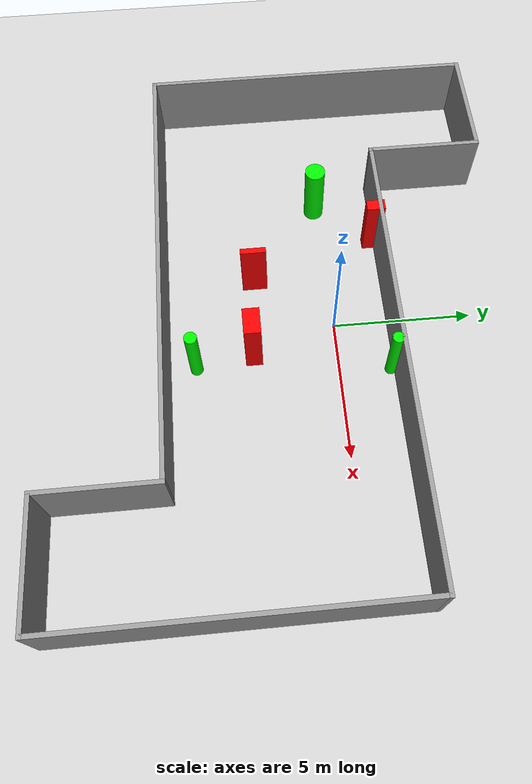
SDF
<sdf version="1.7">
 <world name="default">
  <light name="sun" type="directional">
   <pose>0 0 10 0 -0 0</pose>
   <diffuse>0.8 0.8 0.8 1</diffuse>
   <specular>0.2 0.2 0.2 1</specular>
   <attenuation>
    <range>1000</range>
    <constant>0.9</constant>
    <linear>0.01</linear>
    <quadratic>0.001</quadratic>
   </attenuation>
   <direction>-0.5 0.1 -0.9</direction>
   <spot><inner_angle>0</inner_angle><outer_angle>0</outer_angle><falloff>0</falloff></spot>
  </light>
  <model name="ground_plane">
   <static>1</static>
   <link name="link">
    <collision name="collision">
     <geometry><plane><normal>0 0 1</normal><size>100 100</size></plane></geometry>
     <surface>
      <contact><collide_bitmask>65535</collide_bitmask></contact>
      <friction><ode><mu>100</mu><mu2>50</mu2></ode></friction>
     </surface>
    </collision>
    <visual name="visual">
     <cast_shadows>0</cast_shadows>
     <geometry><plane><normal>0 0 1</normal><size>100 100</size></plane></geometry>
     <material>
      <script><uri>file://media/materials/scripts/gazebo.material</uri><name>Gazebo/Grey</name></script>
     </material>
    </visual>
   </link>
  </model>
  <gravity>0 0 -9.8</gravity>
  <magnetic_field>6e-06 2.3e-05 -4.2e-05</magnetic_field>
  <atmosphere type="adiabatic"/>
  <physics type="ode">
   <max_step_size>0.001</max_step_size>
   <real_time_factor>1</real_time_factor>
   <real_time_update_rate>1000</real_time_update_rate>
  </physics>
  <scene><ambient>0.4 0.4 0.4 1</ambient><background>0.7 0.7 0.7 1</background><shadows>1</shadows></scene>
  <spherical_coordinates>
   <surface_model>EARTH_WGS84</surface_model>
   <latitude_deg>0</latitude_deg>
   <longitude_deg>0</longitude_deg>
   <elevation>0</elevation>
   <heading_deg>0</heading_deg>
  </spherical_coordinates>
  <model name="my_base_walls">
   <link name="Wall_13">
    <collision name="Wall_13_Collision">
     <geometry><box><size>12.15 0.15 2.5</size></box></geometry>
     <pose>0 0 1.25 0 -0 0</pose>
    </collision>
    <visual name="Wall_13_Visual">
     <pose>0 0 1.25 0 -0 0</pose>
     <geometry><box><size>12.15 0.15 2.5</size></box></geometry>
     <material>
      <script><uri>file://media/materials/scripts/gazebo.material</uri><name>Gazebo/Grey</name></script>
      <ambient>1 1 1 1</ambient>
     </material>
     <meta><layer>0</layer></meta>
    </visual>
    <pose>10 -2 0 0 -0 1.5708</pose>
   </link>
   <link name="Wall_15">
    <collision name="Wall_15_Collision">
     <geometry><box><size>16.15 0.15 2.5</size></box></geometry>
     <pose>0 0 1.25 0 -0 0</pose>
    </collision>
    <visual name="Wall_15_Visual">
     <pose>0 0 1.25 0 -0 0</pose>
     <geometry><box><size>16.15 0.15 2.5</size></box></geometry>
     <material>
      <script><uri>file://media/materials/scripts/gazebo.material</uri><name>Gazebo/Grey</name></script>
      <ambient>1 1 1 1</ambient>
     </material>
     <meta><layer>0</layer></meta>
    </visual>
    <pose>2 4 0 0 -0 3.14159</pose>
   </link>
   <link name="Wall_17">
    <collision name="Wall_17_Collision">
     <geometry><box><size>4.15 0.15 2.5</size></box></geometry>
     <pose>0 0 1.25 0 -0 0</pose>
    </collision>
    <visual name="Wall_17_Visual">
     <pose>0 0 1.25 0 -0 0</pose>
     <geometry><box><size>4.15 0.15 2.5</size></box></geometry>
     <material>
      <script><uri>file://media/materials/scripts/gazebo.material</uri><name>Gazebo/Grey</name></script>
      <ambient>1 1 1 1</ambient>
     </material>
     <meta><layer>0</layer></meta>
    </visual>
    <pose>6 -6 0 0 -0 -1.5708</pose>
   </link>
   <link name="Wall_19">
    <collision name="Wall_19_Collision">
     <geometry><box><size>12.15 0.15 2.5</size></box></geometry>
     <pose>0 0 1.25 0 -0 0</pose>
    </collision>
    <visual name="Wall_19_Visual">
     <pose>0 0 1.25 0 -0 0</pose>
     <geometry><box><size>12.15 0.15 2.5</size></box></geometry>
     <material>
      <script><uri>file://media/materials/scripts/gazebo.material</uri><name>Gazebo/Grey</name></script>
      <ambient>1 1 1 1</ambient>
     </material>
     <meta><layer>0</layer></meta>
    </visual>
    <pose>-10 2 0 0 -0 1.5708</pose>
   </link>
   <link name="Wall_21">
    <collision name="Wall_21_Collision">
     <geometry><box><size>4.15 0.15 2.5</size></box></geometry>
     <pose>0 0 1.25 0 -0 0</pose>
    </collision>
    <visual name="Wall_21_Visual">
     <pose>0 0 1.25 0 -0 0</pose>
     <geometry><box><size>4.15 0.15 2.5</size></box></geometry>
     <material>
      <script><uri>file://media/materials/scripts/gazebo.material</uri><name>Gazebo/Grey</name></script>
      <ambient>1 1 1 1</ambient>
     </material>
     <meta><layer>0</layer></meta>
    </visual>
    <pose>-8 8 0 0 -0 0</pose>
   </link>
   <link name="Wall_23">
    <collision name="Wall_23_Collision">
     <geometry><box><size>4.15 0.15 2.5</size></box></geometry>
     <pose>0 0 1.25 0 -0 0</pose>
    </collision>
    <visual name="Wall_23_Visual">
     <pose>0 0 1.25 0 -0 0</pose>
     <geometry><box><size>4.15 0.15 2.5</size></box></geometry>
     <material>
      <script><uri>file://media/materials/scripts/gazebo.material</uri><name>Gazebo/Grey</name></script>
      <ambient>1 1 1 1</ambient>
     </material>
     <meta><layer>0</layer></meta>
    </visual>
    <pose>-6 6 0 0 -0 -1.5708</pose>
   </link>
   <link name="Wall_25">
    <collision name="Wall_25_Collision">
     <geometry><box><size>4.15 0.15 2.5</size></box></geometry>
     <pose>0 0 1.25 0 -0 0</pose>
    </collision>
    <visual name="Wall_25_Visual">
     <pose>0 0 1.25 0 -0 0</pose>
     <geometry><box><size>4.15 0.15 2.5</size></box></geometry>
     <material>
      <script><uri>file://media/materials/scripts/gazebo.material</uri><name>Gazebo/Grey</name></script>
      <ambient>1 1 1 1</ambient>
     </material>
     <meta><layer>0</layer></meta>
    </visual>
    <pose>8 -8 0 0 -0 0</pose>
   </link>
   <link name="Wall_9">
    <collision name="Wall_9_Collision">
     <geometry><box><size>16.15 0.15 2.5</size></box></geometry>
     <pose>0 0 1.25 0 -0 0</pose>
    </collision>
    <visual name="Wall_9_Visual">
     <pose>0 0 1.25 0 -0 0</pose>
     <geometry><box><size>16.15 0.15 2.5</size></box></geometry>
     <material>
      <script><uri>file://media/materials/scripts/gazebo.material</uri><name>Gazebo/Grey</name></script>
      <ambient>1 1 1 1</ambient>
     </material>
     <meta><layer>0</layer></meta>
    </visual>
    <pose>-2 -4 0 0 -0 3.14159</pose>
   </link>
   <static>1</static>
   <pose>-0 -2 0 0 -0 0</pose>
  </model>
  <model name="cylinder1">
   <static>1</static>
   <link name="link">
    <inertial>
     <mass>1</mass>
     <inertia><ixx>0.5</ixx><ixy>0</ixy><ixz>0</ixz><iyy>0.5</iyy><iyz>0</iyz><izz>1</izz></inertia>
    </inertial>
    <collision name="collision">
     <geometry><cylinder><radius>0.22218533018729697</radius><length>2.5</length></cylinder></geometry>
    </collision>
    <visual name="visual">
     <geometry><cylinder><radius>0.22218533018729697</radius><length>2.5</length></cylinder></geometry>
     <material>
      <ambient>0 1 0 1</ambient>
      <diffuse>0 1 0 1</diffuse>
      <specular>0.1 0.1 0.1 1</specular>
      <emissive>0 0 0 0</emissive>
     </material>
    </visual>
   </link>
   <pose>1.2806923012514364 -5.007397925030439 1.25 0 0 0</pose>
  </model>
  <model name="cylinder2">
   <static>1</static>
   <link name="link">
    <inertial>
     <mass>1</mass>
     <inertia><ixx>0.5</ixx><ixy>0</ixy><ixz>0</ixz><iyy>0.5</iyy><iyz>0</iyz><izz>1</izz></inertia>
    </inertial>
    <collision name="collision">
     <geometry><cylinder><radius>0.19943863182389246</radius><length>2.5</length></cylinder></geometry>
    </collision>
    <visual name="visual">
     <geometry><cylinder><radius>0.19943863182389246</radius><length>2.5</length></cylinder></geometry>
     <material>
      <ambient>0 1 0 1</ambient>
      <diffuse>0 1 0 1</diffuse>
      <specular>0.1 0.1 0.1 1</specular>
      <emissive>0 0 0 0</emissive>
     </material>
    </visual>
   </link>
   <pose>1.8735144007315894 1.7991969122840592 1.25 0 0 0</pose>
  </model>
  <model name="cylinder3">
   <static>1</static>
   <link name="link">
    <inertial>
     <mass>1</mass>
     <inertia><ixx>0.5</ixx><ixy>0</ixy><ixz>0</ixz><iyy>0.5</iyy><iyz>0</iyz><izz>1</izz></inertia>
    </inertial>
    <collision name="collision">
     <geometry><cylinder><radius>0.364330344392981</radius><length>2.5</length></cylinder></geometry>
    </collision>
    <visual name="visual">
     <geometry><cylinder><radius>0.364330344392981</radius><length>2.5</length></cylinder></geometry>
     <material>
      <ambient>0 1 0 1</ambient>
      <diffuse>0 1 0 1</diffuse>
      <specular>0.1 0.1 0.1 1</specular>
      <emissive>0 0 0 0</emissive>
     </material>
    </visual>
   </link>
   <pose>-5.138415990313675 -0.1945396343803676 1.25 0 0 0</pose>
  </model>
  <model name="box1">
   <static>1</static>
   <link name="link">
    <inertial>
     <mass>1</mass>
     <inertia><ixx>0.083</ixx><ixy>0</ixy><ixz>0</ixz><iyy>0.083</iyy><iyz>0</iyz><izz>0.083</izz></inertia>
    </inertial>
    <collision name="collision">
     <geometry><box><size>0.4025370639557543 0.660350433440471 2.5</size></box></geometry>
    </collision>
    <visual name="visual">
     <geometry><box><size>0.4025370639557543 0.660350433440471 2.5</size></box></geometry>
     <material>
      <ambient>1 0 0 1</ambient>
      <diffuse>1 0 0 1</diffuse>
      <specular>0.1 0.1 0.1 1</specular>
      <emissive>0 0 0 0</emissive>
     </material>
    </visual>
    <sensor name="my_contact" type="contact">
     <contact><collision>box_collision</collision><topic>__default_topic__</topic></contact>
    </sensor>
   </link>
   <pose>-3.4601375743943086 1.8185272318219834 1.25 0 0 0</pose>
  </model>
  <model name="box2">
   <static>1</static>
   <link name="link">
    <inertial>
     <mass>1</mass>
     <inertia><ixx>0.083</ixx><ixy>0</ixy><ixz>0</ixz><iyy>0.083</iyy><iyz>0</iyz><izz>0.083</izz></inertia>
    </inertial>
    <collision name="collision">
     <geometry><box><size>0.9487286577409646 0.5914519561160232 2.5</size></box></geometry>
    </collision>
    <visual name="visual">
     <geometry><box><size>0.9487286577409646 0.5914519561160232 2.5</size></box></geometry>
     <material>
      <ambient>1 0 0 1</ambient>
      <diffuse>1 0 0 1</diffuse>
      <specular>0.1 0.1 0.1 1</specular>
      <emissive>0 0 0 0</emissive>
     </material>
    </visual>
    <sensor name="my_contact" type="contact">
     <contact><collision>box_collision</collision><topic>__default_topic__</topic></contact>
    </sensor>
   </link>
   <pose>0.8207580015985059 -2.9658354078818956 1.25 0 0 0</pose>
  </model>
  <model name="box3">
   <static>1</static>
   <link name="link">
    <inertial>
     <mass>1</mass>
     <inertia><ixx>0.083</ixx><ixy>0</ixy><ixz>0</ixz><iyy>0.083</iyy><iyz>0</iyz><izz>0.083</izz></inertia>
    </inertial>
    <collision name="collision">
     <geometry><box><size>0.20426512384297235 0.9063823512585041 2.5</size></box></geometry>
    </collision>
    <visual name="visual">
     <geometry><box><size>0.20426512384297235 0.9063823512585041 2.5</size></box></geometry>
     <material>
      <ambient>1 0 0 1</ambient>
      <diffuse>1 0 0 1</diffuse>
      <specular>0.1 0.1 0.1 1</specular>
      <emissive>0 0 0 0</emissive>
     </material>
    </visual>
    <sensor name="my_contact" type="contact">
     <contact><collision>box_collision</collision><topic>__default_topic__</topic></contact>
    </sensor>
   </link>
   <pose>-1.9127500996208777 -2.7201888554170566 1.25 0 0 0</pose>
  </model>
 </world>
</sdf>
